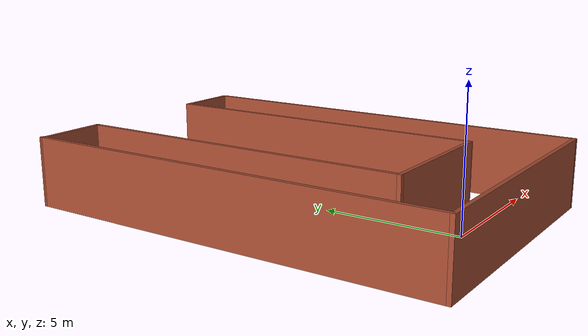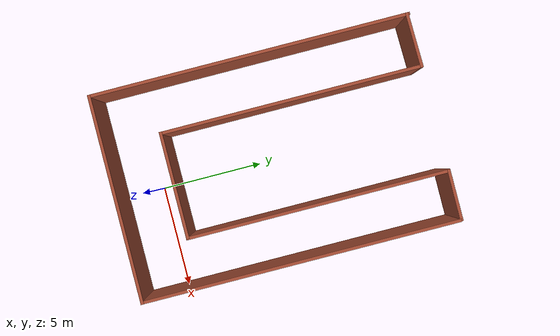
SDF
<?xml version='1.0'?>
<sdf version='1.6'>
  <model name='VinMap'>
    <pose frame=''>-0.049602 5.81321 0 0 -0 0</pose>
    <link name='Wall_0'>
      <collision name='Wall_0_Collision'>
        <geometry>
          <box>
            <size>10.1083 0.15 2.5</size>
          </box>
        </geometry>
        <pose frame=''>0 0 1.25 0 -0 0</pose>
      </collision>
      <visual name='Wall_0_Visual'>
        <pose frame=''>0 0 1.25 0 -0 0</pose>
        <geometry>
          <box>
            <size>10.1083 0.15 2.5</size>
          </box>
        </geometry>
        <material>
          <script>
            <uri>file://media/materials/scripts/gazebo.material</uri>
            <name>Gazebo/Bricks</name>
          </script>
          <ambient>1 1 1 1</ambient>
        </material>
        <meta>
          <layer>0</layer>
        </meta>
      </visual>
      <pose frame=''>0.000576 -7.70571 0 0 0 -0.001507</pose>
    </link>
    <link name='Wall_11'>
      <collision name='Wall_11_Collision'>
        <geometry>
          <box>
            <size>15.5 0.15 2.5</size>
          </box>
        </geometry>
        <pose frame=''>0 0 1.25 0 -0 0</pose>
      </collision>
      <visual name='Wall_11_Visual'>
        <pose frame=''>0 0 1.25 0 -0 0</pose>
        <geometry>
          <box>
            <size>15.5 0.15 2.5</size>
          </box>
        </geometry>
        <material>
          <script>
            <uri>file://media/materials/scripts/gazebo.material</uri>
            <name>Gazebo/Bricks</name>
          </script>
          <ambient>1 1 1 1</ambient>
        </material>
        <meta>
          <layer>0</layer>
        </meta>
      </visual>
      <pose frame=''>4.9796 -0.038211 0 0 -0 1.5708</pose>
    </link>
    <link name='Wall_13'>
      <collision name='Wall_13_Collision'>
        <geometry>
          <box>
            <size>2.66371 0.15 2.5</size>
          </box>
        </geometry>
        <pose frame=''>0 0 1.25 0 -0 0</pose>
      </collision>
      <visual name='Wall_13_Visual'>
        <pose frame=''>0 0 1.25 0 -0 0</pose>
        <geometry>
          <box>
            <size>2.66371 0.15 2.5</size>
          </box>
        </geometry>
        <material>
          <script>
            <uri>file://media/materials/scripts/gazebo.material</uri>
            <name>Gazebo/Bricks</name>
          </script>
          <ambient>1 1 1 1</ambient>
        </material>
        <meta>
          <layer>0</layer>
        </meta>
      </visual>
      <pose frame=''>-3.7216 7.68168 0 0 -0 0.023777</pose>
    </link>
    <link name='Wall_15'>
      <collision name='Wall_15_Collision'>
        <geometry>
          <box>
            <size>2.5 0.15 2.5</size>
          </box>
        </geometry>
        <pose frame=''>0 0 1.25 0 -0 0</pose>
      </collision>
      <visual name='Wall_15_Visual'>
        <pose frame=''>0 0 1.25 0 -0 0</pose>
        <geometry>
          <box>
            <size>2.5 0.15 2.5</size>
          </box>
        </geometry>
        <material>
          <script>
            <uri>file://media/materials/scripts/gazebo.material</uri>
            <name>Gazebo/Bricks</name>
          </script>
          <ambient>1 1 1 1</ambient>
        </material>
        <meta>
          <layer>0</layer>
        </meta>
      </visual>
      <pose frame=''>3.77426 7.71157 0 0 -0 0</pose>
    </link>
    <link name='Wall_2'>
      <collision name='Wall_2_Collision'>
        <geometry>
          <box>
            <size>5.16051 0.15 2.5</size>
          </box>
        </geometry>
        <pose frame=''>0 0 1.25 0 -0 0</pose>
      </collision>
      <visual name='Wall_2_Visual'>
        <pose frame=''>0 0 1.25 0 -0 0</pose>
        <geometry>
          <box>
            <size>5.16051 0.15 2.5</size>
          </box>
        </geometry>
        <material>
          <script>
            <uri>file://media/materials/scripts/gazebo.material</uri>
            <name>Gazebo/Bricks</name>
          </script>
          <ambient>1 1 1 1</ambient>
        </material>
        <meta>
          <layer>0</layer>
        </meta>
      </visual>
      <pose frame=''>0.040508 -4.88843 0 0 -0 3.14159</pose>
    </link>
    <link name='Wall_4'>
      <collision name='Wall_4_Collision'>
        <geometry>
          <box>
            <size>15.5 0.15 2.5</size>
          </box>
        </geometry>
        <pose frame=''>0 0 1.25 0 -0 0</pose>
      </collision>
      <visual name='Wall_4_Visual'>
        <pose frame=''>0 0 1.25 0 -0 0</pose>
        <geometry>
          <box>
            <size>15.5 0.15 2.5</size>
          </box>
        </geometry>
        <material>
          <script>
            <uri>file://media/materials/scripts/gazebo.material</uri>
            <name>Gazebo/Bricks</name>
          </script>
          <ambient>1 1 1 1</ambient>
        </material>
        <meta>
          <layer>0</layer>
        </meta>
      </visual>
      <pose frame=''>-4.97845 0.038321 0 0 -0 1.5708</pose>
    </link>
    <link name='Wall_7'>
      <collision name='Wall_7_Collision'>
        <geometry>
          <box>
            <size>12.75 0.15 2.5</size>
          </box>
        </geometry>
        <pose frame=''>0 0 1.25 0 -0 0</pose>
      </collision>
      <visual name='Wall_7_Visual'>
        <pose frame=''>0 0 1.25 0 -0 0</pose>
        <geometry>
          <box>
            <size>12.75 0.15 2.5</size>
          </box>
        </geometry>
        <material>
          <script>
            <uri>file://media/materials/scripts/gazebo.material</uri>
            <name>Gazebo/Bricks</name>
          </script>
          <ambient>1 1 1 1</ambient>
        </material>
        <meta>
          <layer>0</layer>
        </meta>
      </visual>
      <pose frame=''>-2.46475 1.41157 0 0 -0 1.5708</pose>
    </link>
    <link name='Wall_9'>
      <collision name='Wall_9_Collision'>
        <geometry>
          <box>
            <size>12.75 0.15 2.5</size>
          </box>
        </geometry>
        <pose frame=''>0 0 1.25 0 -0 0</pose>
      </collision>
      <visual name='Wall_9_Visual'>
        <pose frame=''>0 0 1.25 0 -0 0</pose>
        <geometry>
          <box>
            <size>12.75 0.15 2.5</size>
          </box>
        </geometry>
        <material>
          <script>
            <uri>file://media/materials/scripts/gazebo.material</uri>
            <name>Gazebo/Bricks</name>
          </script>
          <ambient>1 1 1 1</ambient>
        </material>
        <meta>
          <layer>0</layer>
        </meta>
      </visual>
      <pose frame=''>2.59926 1.41157 0 0 -0 1.5708</pose>
    </link>
    <static>1</static>
  </model>
</sdf>
